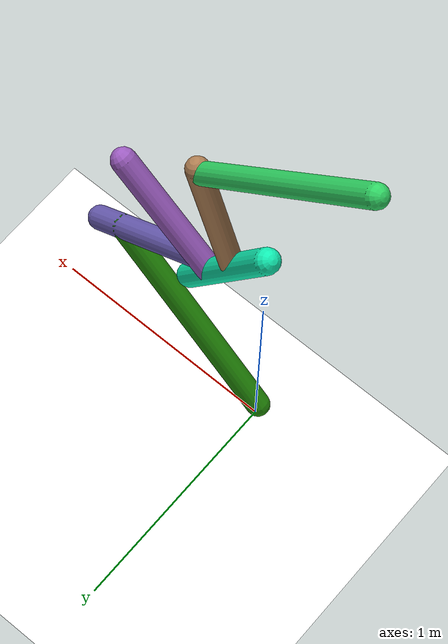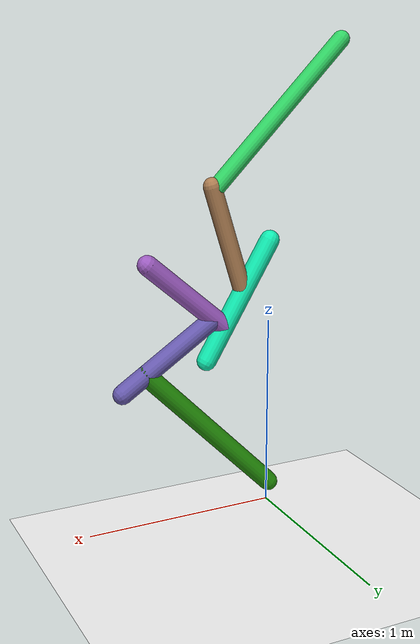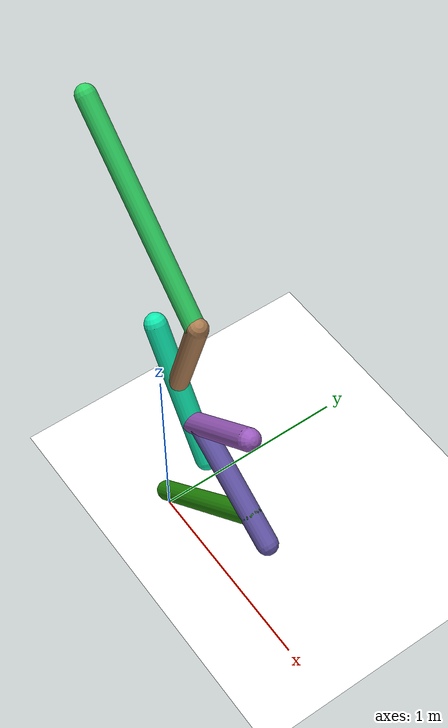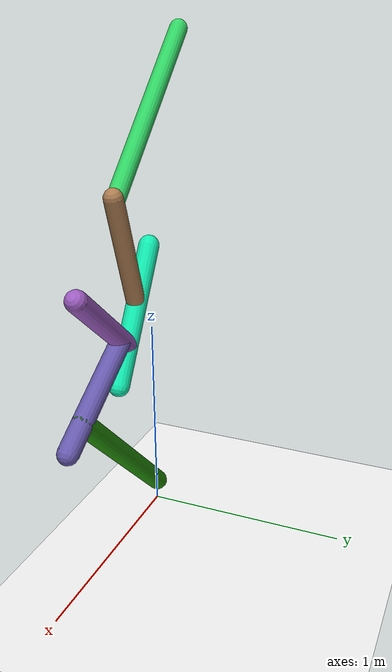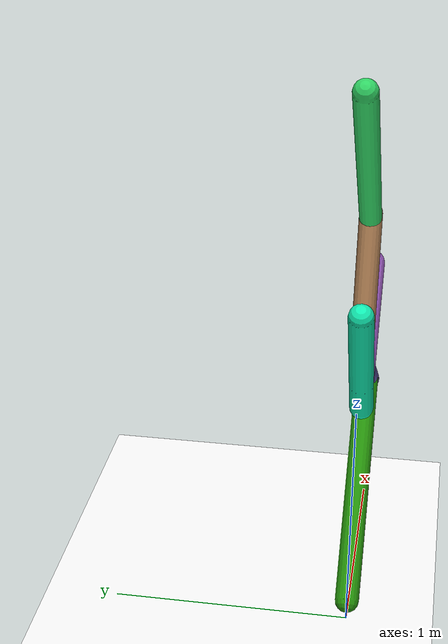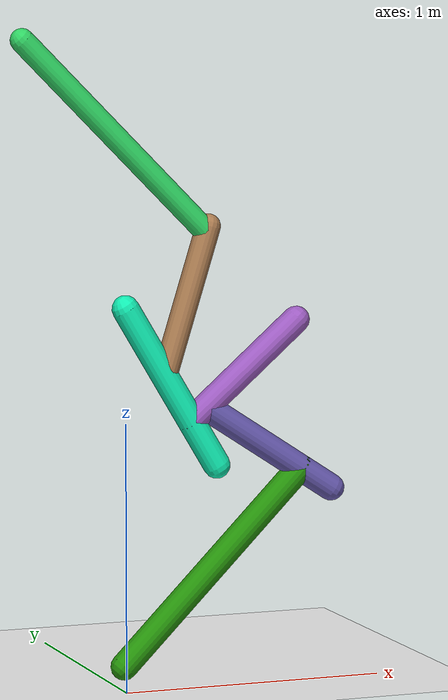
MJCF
<mujoco model="morphology">
  <option timestep="0.01"/>
  <default>
    <default class="/"/>
    <default class="0/"/>
    <default class="0/1/"/>
    <default class="0/1/2/"/>
    <default class="0/1/2/3/"/>
    <default class="0/4/"/>
    <default class="0/4/5/"/>
  </default>
  <asset>
    <texture name="texplane" type="2d" builtin="checker" rgb1="0.10000000000000001 0.20000000000000001 0.29999999999999999" rgb2="0.20000000000000001 0.29999999999999999 0.40000000000000002" width="300" height="300"/>
    <material name="MatPlane" class="/" texture="texplane" texrepeat="20 20" specular="1" shininess="1" reflectance="0.5"/>
  </asset>
  <worldbody>
    <light name="//unnamed_light_0" class="/" directional="true" pos="0 0 1.5" dir="0 0 -1.3" cutoff="100" exponent="1" diffuse="1 1 1" specular="0.10000000000000001 0.10000000000000001 0.10000000000000001"/>
    <geom name="ground" class="/" type="plane" size="15 15 0.5" material="MatPlane" rgba="1 1 1 1"/>
    <site name="body" class="/" size="9.9999999999999995e-07 9.9999999999999995e-07 9.9999999999999995e-07" pos="0 0 1.4242336511611939"/>
    <body pos="0 0 1.4242336511611939" name="0/">
      <joint name="0/rootx/" class="/" type="slide" axis="1 0 0" limited="false" stiffness="0" armature="0" damping="0"/>
      <joint name="0/rootz/" class="/" type="slide" axis="0 0 1" limited="false" stiffness="0" armature="0" damping="0"/>
      <joint name="0/rooty/" class="/" type="hinge" axis="0 1 0" limited="false" stiffness="0" armature="0" damping="0"/>
      <geom name="0/geom" class="0/" type="capsule" contype="1" conaffinity="1" condim="3" size="0.050672379727607089" rgba="0.058918991794279285 0.92084089827150728 0.69351280088633893 1" friction="0.59999999999999998 0.10000000000000001 0.10000000000000001" fromto="0 0 0 0.35335944028682031 0 -0.59129672343940443"/>
      <site name="0/end0" class="0/" size="0.0050000000000000001" pos="0.35335944028682031 0 -0.59129672343940443"/>
      <site name="0/attach1" class="0/" size="9.9999999999999995e-07 9.9999999999999995e-07 9.9999999999999995e-07" pos="0.25343414434371558 0 -0.42408596480816146"/>
      <body pos="0.25343414434371558 0 -0.42408596480816146" name="0/1/">
        <joint name="0/1/joint/" class="0/" type="hinge" axis="0 1 0" limited="true" range="-65.072945163803354 65.072945163803354"/>
        <geom name="0/1/geom" class="0/1/" type="capsule" contype="1" conaffinity="1" condim="3" size="0.050531108349885195" rgba="0.61166137033804291 0.35940432947505063 0.75309664630843098 1" friction="0.59999999999999998 0.10000000000000001 0.10000000000000001" fromto="0 0 0 0.41360378550304366 0 0.36139658908386862"/>
        <site name="0/1/end1" class="0/1/" size="0.0050000000000000001" pos="0.41360378550304366 0 0.36139658908386862"/>
        <site name="0/1/attach2" class="0/1/" size="9.9999999999999995e-07 9.9999999999999995e-07 9.9999999999999995e-07" pos="0.058062082983117921 0 0.050733188333086314"/>
        <body pos="0.058062082983117921 0 0.050733188333086314" name="0/1/2/">
          <geom name="0/1/2/geom" class="0/1/2/" type="capsule" contype="1" conaffinity="1" condim="3" size="0.049905461061261397" rgba="0.3970989589673829 0.34666348335602426 0.67480148796394201 1" friction="0.59999999999999998 0.10000000000000001 0.10000000000000001" fromto="0 0 0 0.49749825363829769 0 -0.32612866003833213"/>
          <site name="0/1/2/end2" class="0/1/2/" size="0.0050000000000000001" pos="0.49749825363829769 0 -0.32612866003833213"/>
          <site name="0/1/2/attach3" class="0/1/2/" size="9.9999999999999995e-07 9.9999999999999995e-07 9.9999999999999995e-07" pos="0.37348979889220579 0 -0.2448364929121121"/>
          <body pos="0.37348979889220579 0 -0.2448364929121121" name="0/1/2/3/">
            <joint name="0/1/2/3/joint/" class="0/1/2/" type="hinge" axis="0 1 0" limited="true" range="-36.886214614608264 36.886214614608264"/>
            <geom name="0/1/2/3/geom" class="0/1/2/3/" type="capsule" contype="1" conaffinity="1" condim="3" size="0.050223008176781582" rgba="0.1468863482166104 0.57040746132776365 0.041561304170497526 1" friction="0.59999999999999998 0.10000000000000001 0.10000000000000001" fromto="0 0 0 -0.69495724233120071 0 -0.706044437527792"/>
            <site name="0/1/2/3/end3" class="0/1/2/3/" size="0.0050000000000000001" pos="-0.69495724233120071 0 -0.706044437527792"/>
          </body>
        </body>
      </body>
      <site name="0/attach4" class="0/" size="9.9999999999999995e-07 9.9999999999999995e-07 9.9999999999999995e-07" pos="0.15073679787330954 0 -0.252236574214316"/>
      <body pos="0.15073679787330954 0 -0.252236574214316" name="0/4/">
        <joint name="0/4/joint/" class="0/" type="hinge" axis="0 1 0" limited="true" range="-44.508371605768048 44.508371605768048"/>
        <geom name="0/4/geom" class="0/4/" type="capsule" contype="1" conaffinity="1" condim="3" size="0.045735345398609836" rgba="0.67485110786673952 0.48916489345184722 0.31825720437791227 1" friction="0.59999999999999998 0.10000000000000001 0.10000000000000001" fromto="0 0 0 0.17008191918056426 0 0.54639769943560523"/>
        <site name="0/4/end4" class="0/4/" size="0.0050000000000000001" pos="0.17008191918056426 0 0.54639769943560523"/>
        <site name="0/4/attach5" class="0/4/" size="9.9999999999999995e-07 9.9999999999999995e-07 9.9999999999999995e-07" pos="0.16316732419369812 0 0.52418417543755069"/>
        <body pos="0.16316732419369812 0 0.52418417543755069" name="0/4/5/">
          <joint name="0/4/5/joint/" class="0/4/" type="hinge" axis="0 1 0" limited="true" range="-69.960277748799399 69.960277748799399"/>
          <geom name="0/4/5/geom" class="0/4/5/" type="capsule" contype="1" conaffinity="1" condim="3" size="0.04411158379478005" rgba="0.1841853431259437 0.82301076309577414 0.38513751017669395 1" friction="0.59999999999999998 0.10000000000000001 0.10000000000000001" fromto="0 0 0 -0.70083593652173681 0 0.70631539143920419"/>
          <site name="0/4/5/end5" class="0/4/5/" size="0.0050000000000000001" pos="-0.70083593652173681 0 0.70631539143920419"/>
        </body>
      </body>
      <camera name="0/side" class="0/" mode="trackcom" pos="0.40000000000000002 -4 0.20000000000000001" quat="0.70699999999999996 0.70699999999999996 0 0"/>
    </body>
  </worldbody>
  <actuator>
    <motor name="0/1/motor" class="0/1/" ctrllimited="true" ctrlrange="-1 1" gear="64" joint="0/1/joint/"/>
    <motor name="0/1/2/3/motor" class="0/1/2/3/" ctrllimited="true" ctrlrange="-1 1" gear="87" joint="0/1/2/3/joint/"/>
    <motor name="0/4/motor" class="0/4/" ctrllimited="true" ctrlrange="-1 1" gear="61" joint="0/4/joint/"/>
    <motor name="0/4/5/motor" class="0/4/5/" ctrllimited="true" ctrlrange="-1 1" gear="82" joint="0/4/5/joint/"/>
  </actuator>
  <sensor>
    <subtreelinvel name="velocity" body="0/"/>
  </sensor>
</mujoco>
